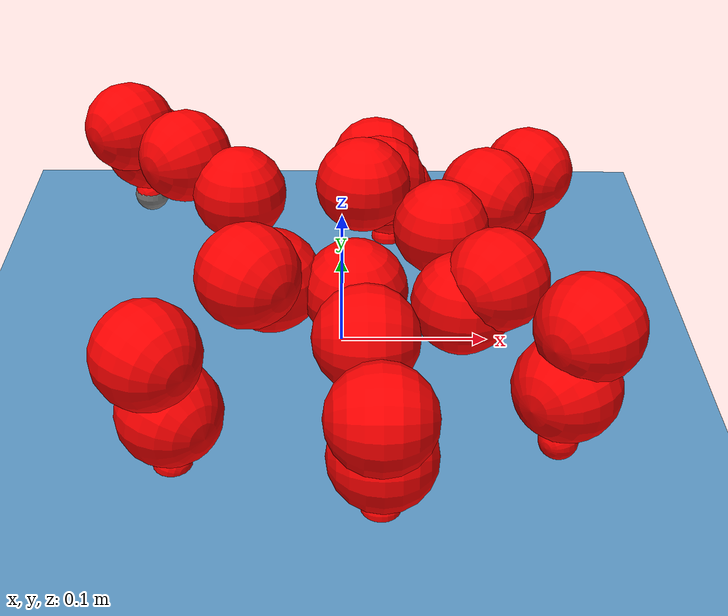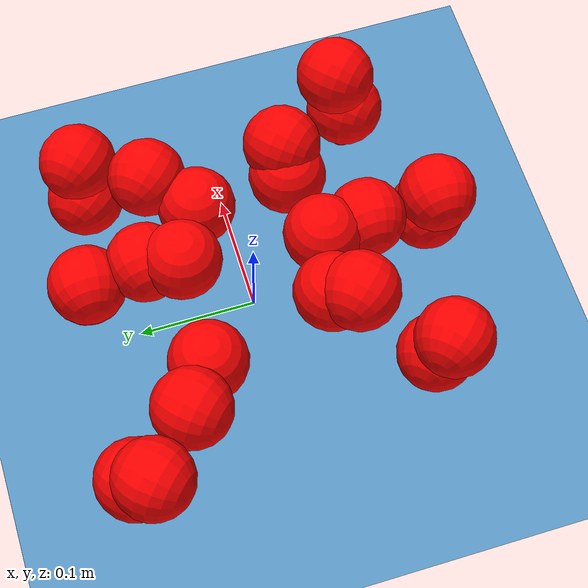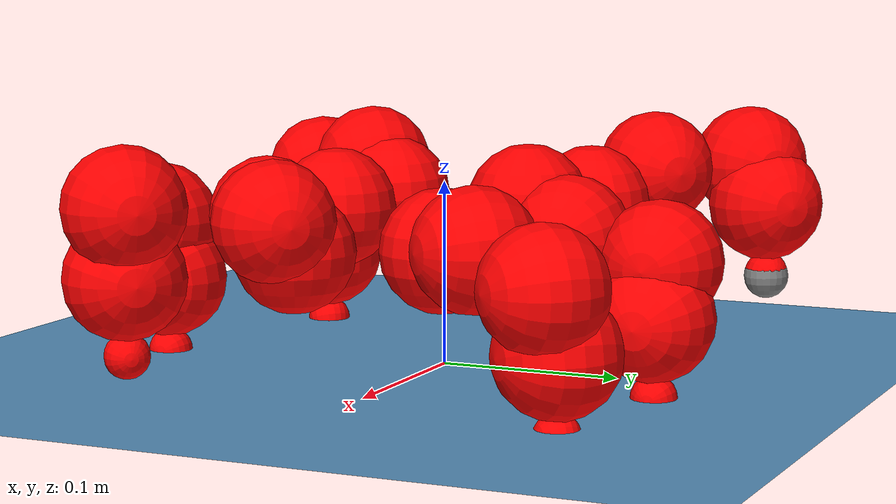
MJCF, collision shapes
<mujoco model="Golem">
  <compiler angle="radian" assetdir="assets" balanceinertia="true" inertiafromgeom="false"/>

  <option timestep="0.005" density="1.2" viscosity="2e-05"/>

  <size nkey="1"/>

  <visual>
    <quality shadowsize="8192"/>
    <map shadowclip="0.5"/>
  </visual>

  <default>
    <default class="/">
      <joint armature="0.01" damping="0.01" frictionloss="0.01"/>
      <geom contype="0" conaffinity="0" group="1" solref="-1000 -80"/>
      <site size="0.01 0.005 0.005" group="5"/>
      <general forcelimited="true" biastype="affine" gainprm="25" biasprm="0 -25 -0.5"/>
      <default class="visual">
        <geom type="mesh" group="2"/>
      </default>
      <default class="collision">
        <geom group="3"/>
      </default>
      <default class="foot">
        <geom size="0.01 0 0" condim="6" group="4" priority="1" solimp="0.015 1 0.01"/>
      </default>
      <default class="reward_collision_sphere">
        <geom group="5" rgba="1 0 0 1"/>
      </default>
    </default>
  </default>

  <asset>
    <texture type="skybox" colorspace="auto" name="//unnamed_texture_0" builtin="gradient" rgb1="0.95 0.95 0.95" rgb2="0.95 0.95 0.95" width="100" height="600"/>
    <texture type="2d" colorspace="auto" name="texplane" builtin="checker" rgb1="0.345 0.575 0.748" rgb2="0.345 0.575 0.748" markrgb="1 1 1" width="512" height="512"/>
    <material name="MatPlane" class="/" texture="texplane" texuniform="true" texrepeat="2 2" specular="0.9"/>
    <mesh name="body" class="/" file="body.stl" scale="0.001 0.001 0.001"/>
    <mesh name="coxa" class="/" file="coxa.stl" scale="0.001 0.001 0.001"/>
    <mesh name="femur" class="/" file="femur.stl" scale="0.001 0.001 0.001"/>
    <mesh name="tibia" class="/" file="tibia.stl" scale="0.001 0.001 0.001"/>
    <mesh name="tarsus" class="/" file="tarsus.stl" scale="0.001 0.001 0.001"/>
  </asset>

  <worldbody>
    <geom name="floor" class="/" size="100 100 0.125" type="plane" group="0" material="MatPlane"/>
    <light name="toplight_shadow" class="/" pos="0 0 5" dir="0.0990148 0.0990148 -0.990148" type="directional" ambient="0.04 0.04 0.04" diffuse="0.55 0.55 0.55" specular="0.12 0.12 0.12"/>
    <light name="toplight_fill" class="/" pos="0 0 5" dir="0.0990148 0.0990148 -0.990148" type="directional" castshadow="false" ambient="0.04 0.04 0.04" diffuse="0.3 0.3 0.3" specular="0.08 0.08 0.08"/>
    <body name="trunk" pos="-0.00156805 0.00149444 -0.00779459" quat="0.999956 -0.00107599 0.00575329 0.00731784">
      <inertial pos="-0.00853068 0.00186207 -0.00628457" quat="0.999997 -0.00154848 0.00132105 0.00124183" mass="1.5884" diaginertia="7.1201e-05 0.0010956 0.0577374"/>
      <joint name="//unnamed_joint_0" type="free"/>
      <geom name="//unnamed_geom_1" class="/" pos="0 0 0.0922905" quat="1 0 0 0" type="mesh" rgba="0.9 0.9 0.9 1" mesh="body"/>
      <site name="imu" class="/" pos="-0.0402392 0.0621319 0.132451" size="0.00812658"/>
      <camera name="track" class="/" pos="0 -1.23779 0" quat="0.707107 0.707107 0 0" mode="trackcom"/>
      <camera name="ego_camera" class="/" pos="0.049015 0 0.144204" quat="-0.5 -0.5 0.5 0.5"/>
      <body name="coxa_RR" pos="-0.0525685 -0.0615736 0.0929992" quat="0.378832 -0.00607619 0.00567077 -0.925428">
        <inertial pos="0.00374627 0.00229667 -0.014824" quat="0.997787 -0.0494717 0.00238181 0.0443578" mass="0.0948032" diaginertia="6.28202e-05 0.000707399 0.052701"/>
        <joint name="coxa_joint_RR" class="/" pos="0 0 0" axis="0.0227065 -0.0129726 -0.999658" range="-2.83874 3.4802" armature="0.00823649" damping="0" frictionloss="0.00301134"/>
        <geom name="//unnamed_geom_2" class="/" type="mesh" rgba="0.2 0.2 0.2 1" mesh="coxa"/>
        <geom name="//unnamed_geom_3" class="reward_collision_sphere" size="0.0325063" pos="-0.0113112 0 0"/>
        <body name="femur_RR" pos="0.00994053 0.00364466 0.0150763" quat="0.501126 -0.499963 0.497313 0.501588">
          <inertial pos="-0.0013033 -0.00340581 0.0072661" quat="0.999735 0.0106366 0.0202821 -0.00214123" mass="0.0997965" diaginertia="6.42171e-05 0.000757999 0.067824"/>
          <joint name="femur_joint_RR" class="/" pos="0 0 0" axis="-0.0471888 -0.0293092 -0.998456" stiffness="0.000540949" range="-3.47888 3.0638" armature="0.0143535" damping="0.062771" frictionloss="0.011712"/>
          <geom name="//unnamed_geom_4" class="/" type="mesh" rgba="0.9 0.9 0.9 1" mesh="femur"/>
          <geom name="//unnamed_geom_5" class="reward_collision_sphere" size="0.0325063"/>
          <body name="tibia_RR" pos="0.0143055 -0.0804412 0.00399476" quat="-0.00147217 0.999975 0.00695841 -9.16788e-05">
            <inertial pos="-0.0154747 -0.0122417 0.00150389" quat="0.999719 0.0186669 0.00653369 0.0130454" mass="0.0868969" diaginertia="8.50238e-05 0.000928945 0.0748576"/>
            <joint name="tibia_joint_RR" class="/" pos="0 0 0" axis="-0.0764817 -0.0405945 0.996244" range="-3.48772 3.05975" armature="0.0136577" damping="0.0692518" frictionloss="0.0107016"/>
            <geom name="//unnamed_geom_6" class="/" type="mesh" rgba="0.2 0.2 0.2 1" mesh="tibia"/>
            <geom name="//unnamed_geom_7" class="reward_collision_sphere" size="0.0325063"/>
            <body name="tarsus_RR" pos="0.0477834 -0.010989 -0.00241036" quat="0.999988 -0.000887546 -0.0043436 0.00201991">
              <inertial pos="0.0199286 0.00561387 -0.00568574" quat="0.500956 0.486172 0.50866 0.50393" mass="0.0965441" diaginertia="5.55445e-05 0.000889517 0.0444906"/>
              <joint name="tarsus_joint_RR" class="/" pos="0 0 0" axis="-0.0672226 -0.0395176 0.996955" range="-2.91755 3.2636" armature="0.010786" damping="0" frictionloss="0.00535632"/>
              <geom name="//unnamed_geom_8" class="/" type="mesh" rgba="0.9 0.9 0.9 1" mesh="tarsus"/>
              <geom name="foot_1" class="foot" size="0.00533606" pos="0.0422283 0 0" quat="0 -0.707107 0 0.707107"/>
              <geom name="//unnamed_geom_10" class="reward_collision_sphere" size="0.0325063"/>
              <geom name="//unnamed_geom_11" class="reward_collision_sphere" size="0.0121899" pos="0.0405316 0 0"/>
              <site name="foot_1" class="foot" pos="0.0422283 0 0" quat="0 -0.707107 0 0.707107" size="0.00812658"/>
            </body>
          </body>
        </body>
      </body>
      <body name="coxa_RM" pos="0.00752621 -0.0740057 0.0913376" quat="0.705215 0.0075139 0.00305381 -0.708947">
        <inertial pos="-0.0111113 0.0162738 -0.00924415" quat="0.99972 0.0041487 -0.0229251 0.004259" mass="0.142686" diaginertia="0.000102672 0.00105266 0.0717119"/>
        <joint name="coxa_joint_RM" class="/" pos="0 0 0" axis="-0.0789875 0.0163335 -0.996742" range="-3.10613 2.82904" armature="0.0014473" damping="0.0106865" frictionloss="0.0138283"/>
        <geom name="//unnamed_geom_12" class="/" type="mesh" rgba="0.2 0.2 0.2 1" mesh="coxa"/>
        <geom name="//unnamed_geom_13" class="reward_collision_sphere" size="0.0325063" pos="-0.0113112 0 0"/>
        <body name="femur_RM" pos="0.0287636 0.00575676 -0.00487509" quat="0.501152 -0.499043 0.499775 0.500027">
          <inertial pos="-0.0131174 -0.00780424 -0.00541103" quat="0.999248 0.0233137 0.0297387 -0.00867909" mass="0.0761696" diaginertia="7.63375e-05 0.000841436 0.0578589"/>
          <joint name="femur_joint_RM" class="/" pos="0 0 0" axis="-0.0463014 0.00698042 -0.998903" range="-2.9109 3.20995" armature="0.0107585" damping="0" frictionloss="0.00260663"/>
          <geom name="//unnamed_geom_14" class="/" type="mesh" rgba="0.9 0.9 0.9 1" mesh="femur"/>
          <geom name="//unnamed_geom_15" class="reward_collision_sphere" size="0.0325063"/>
          <body name="tibia_RM" pos="0.00508295 -0.0647315 0.00689544" quat="0.00139366 0.999996 -0.00224497 0.00119692">
            <inertial pos="-0.00999537 0.00245265 0.0164774" quat="0.996846 -0.0321091 0.0403439 -0.0603285" mass="0.108246" diaginertia="5.76399e-05 0.000823992 0.0480917"/>
            <joint name="tibia_joint_RM" class="/" pos="0 0 0" axis="0.00326249 -0.00254365 0.999991" stiffness="0.00322029" range="-3.27789 3.34827" armature="0.00208157" damping="0" frictionloss="0.000703022"/>
            <geom name="//unnamed_geom_16" class="/" type="mesh" rgba="0.2 0.2 0.2 1" mesh="tibia"/>
            <geom name="//unnamed_geom_17" class="reward_collision_sphere" size="0.0325063"/>
            <body name="tarsus_RM" pos="0.0325472 -0.00554276 -0.00162392" quat="1 -0.00015339 0.000219896 -7.57764e-06">
              <inertial pos="0.00878559 -0.00239342 0.0057263" quat="0.546427 0.46067 0.473026 0.515215" mass="0.0974433" diaginertia="6.52014e-05 0.000786193 0.0724591"/>
              <joint name="tarsus_joint_RM" class="/" pos="0 0 0" axis="-0.00692626 0.00720946 0.99995" range="-3.48875 2.91004" armature="0.000942793" damping="0.0160166" frictionloss="0.0064658"/>
              <geom name="//unnamed_geom_18" class="/" type="mesh" rgba="0.9 0.9 0.9 1" mesh="tarsus"/>
              <geom name="foot_2" class="foot" size="0.00291953" pos="0.0422283 0 0" quat="0 -0.707107 0 0.707107"/>
              <geom name="//unnamed_geom_20" class="reward_collision_sphere" size="0.0325063"/>
              <geom name="//unnamed_geom_21" class="reward_collision_sphere" size="0.0121899" pos="0.0405316 0 0"/>
              <site name="foot_2" class="foot" pos="0.0422283 0 0" quat="0 -0.707107 0 0.707107" size="0.00812658"/>
            </body>
          </body>
        </body>
      </body>
      <body name="coxa_RF" pos="0.0829359 -0.0625568 0.0772226" quat="0.923839 0.00082032 -0.000470651 -0.382781">
        <inertial pos="0.0143886 0.0189921 -0.0132545" quat="0.997533 -0.0348258 -0.0407738 -0.0453071" mass="0.116332" diaginertia="6.15318e-05 0.000808737 0.0615177"/>
        <joint name="coxa_joint_RF" class="/" pos="0 0 0" axis="0.00237063 0.0215817 -0.999764" stiffness="0.00465381" range="-2.9287 2.79672" armature="0.0134771" damping="0" frictionloss="0.0104661"/>
        <geom name="//unnamed_geom_22" class="/" type="mesh" rgba="0.2 0.2 0.2 1" mesh="coxa"/>
        <geom name="//unnamed_geom_23" class="reward_collision_sphere" size="0.0325063" pos="-0.0113112 0 0"/>
        <body name="femur_RF" pos="0.00370498 0.0130859 0.0185459" quat="0.505613 -0.495373 0.502309 0.496636">
          <inertial pos="0.000491916 0.014248 -0.0168788" quat="0.996175 -0.0484993 0.0716667 -0.0121038" mass="0.121563" diaginertia="9.12928e-05 0.00114211 0.0701705"/>
          <joint name="femur_joint_RF" class="/" pos="0 0 0" axis="-0.00366332 0.0469183 -0.998892" range="-3.41428 3.12129" armature="0.00455871" damping="0.0627444" frictionloss="0.0149715"/>
          <geom name="//unnamed_geom_24" class="/" type="mesh" rgba="0.9 0.9 0.9 1" mesh="femur"/>
          <geom name="//unnamed_geom_25" class="reward_collision_sphere" size="0.0325063"/>
          <body name="tibia_RF" pos="-0.00954133 -0.0751845 -0.0110651" quat="-0.00509138 0.999975 0.0049544 0.000364167">
            <inertial pos="0.00253173 -0.0120436 0.00971322" quat="0.997698 -0.0283546 -0.0267003 0.0555125" mass="0.103543" diaginertia="7.3289e-05 0.00101468 0.0752355"/>
            <joint name="tibia_joint_RF" class="/" pos="0 0 0" axis="0.0545577 -0.0597915 0.996719" range="-2.9919 3.19141" armature="0.0124488" damping="0" frictionloss="0.00786503"/>
            <geom name="//unnamed_geom_26" class="/" type="mesh" rgba="0.2 0.2 0.2 1" mesh="tibia"/>
            <geom name="//unnamed_geom_27" class="reward_collision_sphere" size="0.0325063"/>
            <body name="tarsus_RF" pos="0.038089 -0.00159566 0.0118231" quat="0.999965 0.00756427 -0.00351698 0.000802379">
              <inertial pos="0.0392501 0.000531535 -0.0186413" quat="0.534606 0.438811 0.51062 0.510791" mass="0.150375" diaginertia="7.30298e-05 0.00118929 0.0717586"/>
              <joint name="tarsus_joint_RF" class="/" pos="0 0 0" axis="0.0806609 0.033265 0.996186" range="-3.49045 2.97984" armature="0.00820187" damping="0" frictionloss="0.00262442"/>
              <geom name="//unnamed_geom_28" class="/" type="mesh" rgba="0.9 0.9 0.9 1" mesh="tarsus"/>
              <geom name="foot_3" class="foot" size="0.00548737" pos="0.0422283 0 0" quat="0 -0.707107 0 0.707107"/>
              <geom name="//unnamed_geom_30" class="reward_collision_sphere" size="0.0325063"/>
              <geom name="//unnamed_geom_31" class="reward_collision_sphere" size="0.0121899" pos="0.0405316 0 0"/>
              <site name="foot_3" class="foot" pos="0.0422283 0 0" quat="0 -0.707107 0 0.707107" size="0.00812658"/>
            </body>
          </body>
        </body>
      </body>
      <body name="coxa_LR" pos="-0.0776493 0.0651764 0.0898486" quat="0.384084 0.00741365 0.00404903 0.92326">
        <inertial pos="-0.01643 -0.00237193 0.0128922" quat="0.997278 -0.00612751 0.051268 0.0526427" mass="0.103538" diaginertia="7.1156e-05 0.000880744 0.0604732"/>
        <joint name="coxa_joint_LR" class="/" pos="0 0 0" axis="-0.000722897 -0.0865022 -0.996251" stiffness="0.0283721" range="-2.99503 3.03871" armature="0.0126612" damping="0.0432457" frictionloss="0.00931121"/>
        <geom name="//unnamed_geom_32" class="/" type="mesh" rgba="0.2 0.2 0.2 1" mesh="coxa"/>
        <geom name="//unnamed_geom_33" class="reward_collision_sphere" size="0.0325063" pos="-0.0113112 0 0"/>
        <body name="femur_LR" pos="0.0335336 0.0110832 0.01543" quat="0.498552 -0.506244 0.500342 0.494794">
          <inertial pos="-0.00952933 0.00576551 -0.00278769" quat="0.999891 0.00296715 0.0012023 0.0144234" mass="0.122961" diaginertia="8.08232e-05 0.000978435 0.0570441"/>
          <joint name="femur_joint_LR" class="/" pos="0 0 0" axis="-0.0106498 0.00476987 0.999932" range="-3.36463 2.76182" armature="0.00928424" damping="0" frictionloss="0.000673594"/>
          <geom name="//unnamed_geom_34" class="/" type="mesh" rgba="0.9 0.9 0.9 1" mesh="femur"/>
          <geom name="//unnamed_geom_35" class="reward_collision_sphere" size="0.0325063"/>
          <body name="tibia_LR" pos="0.000952531 -0.0614443 0.00144124" quat="0.000910515 0.999996 0.00079195 -0.00257086">
            <inertial pos="-0.0083938 0.00715557 -0.00666974" quat="0.999163 0.0152313 -0.0170468 0.0339348" mass="0.133719" diaginertia="8.35531e-05 0.000813439 0.0678899"/>
            <joint name="tibia_joint_LR" class="/" pos="0 0 0" axis="0.000545723 0.000940471 -0.999999" stiffness="0.0376867" range="-3.30983 3.46462" armature="0.0158457" damping="0" frictionloss="0.0128851"/>
            <geom name="//unnamed_geom_36" class="/" type="mesh" rgba="0.2 0.2 0.2 1" mesh="tibia"/>
            <geom name="//unnamed_geom_37" class="reward_collision_sphere" size="0.0325063"/>
            <body name="tarsus_LR" pos="0.0216934 0.00106086 0.0160648" quat="0.999992 1.80111e-05 -0.00333481 0.00228347">
              <inertial pos="0.0186201 0.00961242 0.000807987" quat="0.497075 0.515742 0.492588 0.494251" mass="0.0952907" diaginertia="6.96402e-05 0.000928041 0.0543691"/>
              <joint name="tarsus_joint_LR" class="/" pos="0 0 0" axis="0.0161779 0.03716 -0.999178" stiffness="0.0527543" range="-3.48037 3.16252" armature="0.00746654" damping="0.0961245" frictionloss="0.00564644"/>
              <geom name="//unnamed_geom_38" class="/" type="mesh" rgba="0.9 0.9 0.9 1" mesh="tarsus"/>
              <geom name="foot_4" class="foot" size="0.0127461" pos="0.0422283 0 0" quat="0.707107 0 -0.707107 0"/>
              <geom name="//unnamed_geom_40" class="reward_collision_sphere" size="0.0325063"/>
              <geom name="//unnamed_geom_41" class="reward_collision_sphere" size="0.0121899" pos="0.0405316 0 0"/>
              <site name="foot_4" class="foot" pos="0.0422283 0 0" quat="0.707107 0 -0.707107 0" size="0.00812658"/>
            </body>
          </body>
        </body>
      </body>
      <body name="coxa_LM" pos="0.0153559 0.06439 0.0998248" quat="0.703861 0.00820976 -0.00100408 0.71029">
        <inertial pos="0.0103567 -0.000347971 -0.0126011" quat="0.999638 0.02338 -0.012244 -0.0051902" mass="0.0914984" diaginertia="4.49136e-05 0.000693986 0.0411741"/>
        <joint name="coxa_joint_LM" class="/" pos="0 0 0" axis="0.0110655 -0.00580704 -0.999922" range="-2.83226 3.28048" armature="0.0143276" damping="0" frictionloss="0.00206112"/>
        <geom name="//unnamed_geom_42" class="/" type="mesh" rgba="0.2 0.2 0.2 1" mesh="coxa"/>
        <geom name="//unnamed_geom_43" class="reward_collision_sphere" size="0.0325063" pos="-0.0113112 0 0"/>
        <body name="femur_LM" pos="0.0162897 -0.0135625 -0.0134224" quat="0.499944 -0.500107 0.499593 0.500356">
          <inertial pos="-0.00125209 0.0139106 0.00159672" quat="0.998035 -0.0490682 -0.0124099 0.0369406" mass="0.154631" diaginertia="0.000103367 0.00106364 0.0727313"/>
          <joint name="femur_joint_LM" class="/" pos="0 0 0" axis="-0.0499307 0.0204182 0.998544" range="-3.29522 3.23887" armature="0.0133221" damping="0" frictionloss="0.00282992"/>
          <geom name="//unnamed_geom_44" class="/" type="mesh" rgba="0.9 0.9 0.9 1" mesh="femur"/>
          <geom name="//unnamed_geom_45" class="reward_collision_sphere" size="0.0325063"/>
          <body name="tibia_LM" pos="0.0107985 -0.0494618 -0.000190365" quat="-0.00151898 0.999995 -0.00173247 0.00200645">
            <inertial pos="0.0175926 -0.0189541 -0.00538535" quat="0.999997 0.00143037 -0.0002337 -0.00195388" mass="0.0796249" diaginertia="8.28207e-05 0.000793879 0.0532651"/>
            <joint name="tibia_joint_LM" class="/" pos="0 0 0" axis="0.00129649 0.0014182 -0.999998" range="-3.42448 3.15912" armature="0.00914084" damping="0.0159327" frictionloss="0.0130582"/>
            <geom name="//unnamed_geom_46" class="/" type="mesh" rgba="0.2 0.2 0.2 1" mesh="tibia"/>
            <geom name="//unnamed_geom_47" class="reward_collision_sphere" size="0.0325063"/>
            <body name="tarsus_LM" pos="0.0274222 -0.000604514 0.0121717" quat="0.999998 0.000667509 0.00115631 0.00157728">
              <inertial pos="0.0325069 0.00644605 0.00143915" quat="0.513272 0.497745 0.509607 0.478647" mass="0.114723" diaginertia="6.56128e-05 0.000837315 0.0463939"/>
              <joint name="tarsus_joint_LM" class="/" pos="0 0 0" axis="-0.075174 -0.00967554 -0.997123" stiffness="0.0234602" range="-3.30943 3.42054" armature="0.00807992" damping="0" frictionloss="0.0143183"/>
              <geom name="//unnamed_geom_48" class="/" type="mesh" rgba="0.9 0.9 0.9 1" mesh="tarsus"/>
              <geom name="foot_5" class="foot" size="0.00628877" pos="0.0422283 0 0" quat="0.707107 0 -0.707107 0"/>
              <geom name="//unnamed_geom_50" class="reward_collision_sphere" size="0.0325063"/>
              <geom name="//unnamed_geom_51" class="reward_collision_sphere" size="0.0121899" pos="0.0405316 0 0"/>
              <site name="foot_5" class="foot" pos="0.0422283 0 0" quat="0.707107 0 -0.707107 0" size="0.00812658"/>
            </body>
          </body>
        </body>
      </body>
      <body name="coxa_LF" pos="0.0759072 0.0346237 0.0817917" quat="0.922921 0.00505247 0.000229394 0.384956">
        <inertial pos="0.00554973 0.0140572 0.00634206" quat="0.999234 0.038676 -0.00429662 0.00424212" mass="0.12187" diaginertia="9.11465e-05 0.00128748 0.0751897"/>
        <joint name="coxa_joint_LF" class="/" pos="0 0 0" axis="-0.00359392 -0.00509672 -0.999981" stiffness="0.00239351" range="-2.86722 3.32946" armature="0.00690757" damping="0.0543803" frictionloss="0.00340534"/>
        <geom name="//unnamed_geom_52" class="/" type="mesh" rgba="0.2 0.2 0.2 1" mesh="coxa"/>
        <geom name="//unnamed_geom_53" class="reward_collision_sphere" size="0.0325063" pos="-0.0113112 0 0"/>
        <body name="femur_LF" pos="0.0359271 -0.0012768 0.00730911" quat="0.495884 -0.501082 0.498433 0.50456">
          <inertial pos="0.000889149 0.00149875 0.00565508" quat="0.995721 0.0638622 -0.0347116 -0.0570732" mass="0.110826" diaginertia="8.70782e-05 0.00113274 0.0744175"/>
          <joint name="femur_joint_LF" class="/" pos="0 0 0" axis="0.0592593 0.0115849 0.998175" stiffness="0.0086137" range="-3.21955 3.35755" armature="0.010142" damping="0" frictionloss="0.0158218"/>
          <geom name="//unnamed_geom_54" class="/" type="mesh" rgba="0.9 0.9 0.9 1" mesh="femur"/>
          <geom name="//unnamed_geom_55" class="reward_collision_sphere" size="0.0325063"/>
          <body name="tibia_LF" pos="0.0101009 -0.0623645 0.0083558" quat="0.000658713 0.999999 0.00112953 0.000684701">
            <inertial pos="-0.00604352 0.00577742 0.00360034" quat="0.998366 -0.0148029 0.0498005 -0.0238053" mass="0.0895334" diaginertia="8.43829e-05 0.00103692 0.071427"/>
            <joint name="tibia_joint_LF" class="/" pos="0 0 0" axis="0.0325614 0.0493533 -0.99825" range="-2.77611 3.05555" armature="0.00281153" damping="0" frictionloss="0.0135831"/>
            <geom name="//unnamed_geom_56" class="/" type="mesh" rgba="0.2 0.2 0.2 1" mesh="tibia"/>
            <geom name="//unnamed_geom_57" class="reward_collision_sphere" size="0.0325063"/>
            <body name="tarsus_LF" pos="0.0339074 -0.0098269 -0.0115162" quat="0.999998 0.00023484 -0.00170567 -0.00042656">
              <inertial pos="0.0331813 0.000208994 -0.0179197" quat="0.493084 0.503341 0.502624 0.500885" mass="0.131126" diaginertia="7.61787e-05 0.00102428 0.0654616"/>
              <joint name="tarsus_joint_LF" class="/" pos="0 0 0" axis="-0.0446697 -0.0560108 -0.99743" range="-3.13984 2.88995" armature="0.00715363" damping="0.0960061" frictionloss="0.00575855"/>
              <geom name="//unnamed_geom_58" class="/" type="mesh" rgba="0.9 0.9 0.9 1" mesh="tarsus"/>
              <geom name="foot_6" class="foot" size="0.00909714" pos="0.0422283 0 0" quat="0.707107 0 -0.707107 0"/>
              <geom name="//unnamed_geom_60" class="reward_collision_sphere" size="0.0325063"/>
              <geom name="//unnamed_geom_61" class="reward_collision_sphere" size="0.0121899" pos="0.0405316 0 0"/>
              <site name="foot_6" class="foot" pos="0.0422283 0 0" quat="0.707107 0 -0.707107 0" size="0.00812658"/>
            </body>
          </body>
        </body>
      </body>
    </body>
  </worldbody>

  <contact>
    <pair class="/" geom1="floor" geom2="foot_1" name="//unnamed_contact_0"/>
    <pair class="/" geom1="floor" geom2="foot_2" name="//unnamed_contact_1"/>
    <pair class="/" geom1="floor" geom2="foot_3" name="//unnamed_contact_2"/>
    <pair class="/" geom1="floor" geom2="foot_4" name="//unnamed_contact_3"/>
    <pair class="/" geom1="floor" geom2="foot_5" name="//unnamed_contact_4"/>
    <pair class="/" geom1="floor" geom2="foot_6" name="//unnamed_contact_5"/>
  </contact>

  <actuator>
    <general name="coxa_joint_RR" class="/" joint="coxa_joint_RR" forcerange="-2.8018 2.8018" gainprm="29.5516" biasprm="0 -29.5516 -0.585915"/>
    <general name="femur_joint_RR" class="/" joint="femur_joint_RR" forcerange="-3.59974 3.59974" gainprm="29.5516" biasprm="0 -29.5516 -0.585915"/>
    <general name="tibia_joint_RR" class="/" joint="tibia_joint_RR" forcerange="-7.66976 7.66976" gainprm="29.5516" biasprm="0 -29.5516 -0.585915"/>
    <general name="tarsus_joint_RR" class="/" joint="tarsus_joint_RR" forcerange="-4.39284 4.39284" gainprm="29.5516" biasprm="0 -29.5516 -0.585915"/>
    <general name="coxa_joint_RM" class="/" joint="coxa_joint_RM" forcerange="-2.76372 2.76372" gainprm="29.5516" biasprm="0 -29.5516 -0.585915"/>
    <general name="femur_joint_RM" class="/" joint="femur_joint_RM" forcerange="-2.47793 2.47793" gainprm="29.5516" biasprm="0 -29.5516 -0.585915"/>
    <general name="tibia_joint_RM" class="/" joint="tibia_joint_RM" forcerange="-8.31989 8.31989" gainprm="29.5516" biasprm="0 -29.5516 -0.585915"/>
    <general name="tarsus_joint_RM" class="/" joint="tarsus_joint_RM" forcerange="-1.88145 1.88145" gainprm="29.5516" biasprm="0 -29.5516 -0.585915"/>
    <general name="coxa_joint_RF" class="/" joint="coxa_joint_RF" forcerange="-2.20694 2.20694" gainprm="29.5516" biasprm="0 -29.5516 -0.585915"/>
    <general name="femur_joint_RF" class="/" joint="femur_joint_RF" forcerange="-9.67446 9.67446" gainprm="29.5516" biasprm="0 -29.5516 -0.585915"/>
    <general name="tibia_joint_RF" class="/" joint="tibia_joint_RF" forcerange="-8.22068 8.22068" gainprm="29.5516" biasprm="0 -29.5516 -0.585915"/>
    <general name="tarsus_joint_RF" class="/" joint="tarsus_joint_RF" forcerange="-5.00192 5.00192" gainprm="29.5516" biasprm="0 -29.5516 -0.585915"/>
    <general name="coxa_joint_LR" class="/" joint="coxa_joint_LR" forcerange="-3.41744 3.41744" gainprm="29.5516" biasprm="0 -29.5516 -0.585915"/>
    <general name="femur_joint_LR" class="/" joint="femur_joint_LR" forcerange="-8.97732 8.97732" gainprm="29.5516" biasprm="0 -29.5516 -0.585915"/>
    <general name="tibia_joint_LR" class="/" joint="tibia_joint_LR" forcerange="-8.26958 8.26958" gainprm="29.5516" biasprm="0 -29.5516 -0.585915"/>
    <general name="tarsus_joint_LR" class="/" joint="tarsus_joint_LR" forcerange="-7.20953 7.20953" gainprm="29.5516" biasprm="0 -29.5516 -0.585915"/>
    <general name="coxa_joint_LM" class="/" joint="coxa_joint_LM" forcerange="-5.98032 5.98032" gainprm="29.5516" biasprm="0 -29.5516 -0.585915"/>
    <general name="femur_joint_LM" class="/" joint="femur_joint_LM" forcerange="-5.93479 5.93479" gainprm="29.5516" biasprm="0 -29.5516 -0.585915"/>
    <general name="tibia_joint_LM" class="/" joint="tibia_joint_LM" forcerange="-9.96293 9.96293" gainprm="29.5516" biasprm="0 -29.5516 -0.585915"/>
    <general name="tarsus_joint_LM" class="/" joint="tarsus_joint_LM" forcerange="-5.9083 5.9083" gainprm="29.5516" biasprm="0 -29.5516 -0.585915"/>
    <general name="coxa_joint_LF" class="/" joint="coxa_joint_LF" forcerange="-2.45333 2.45333" gainprm="29.5516" biasprm="0 -29.5516 -0.585915"/>
    <general name="femur_joint_LF" class="/" joint="femur_joint_LF" forcerange="-2.37114 2.37114" gainprm="29.5516" biasprm="0 -29.5516 -0.585915"/>
    <general name="tibia_joint_LF" class="/" joint="tibia_joint_LF" forcerange="-6.56024 6.56024" gainprm="29.5516" biasprm="0 -29.5516 -0.585915"/>
    <general name="tarsus_joint_LF" class="/" joint="tarsus_joint_LF" forcerange="-7.78046 7.78046" gainprm="29.5516" biasprm="0 -29.5516 -0.585915"/>
  </actuator>

  <sensor>
    <gyro site="imu" name="imu_angular_velocity"/>
    <velocimeter site="imu" name="imu_linear_velocity"/>
    <framelinvel objtype="site" objname="foot_1" name="foot_1_global_linear_velocity"/>
    <framelinvel objtype="site" objname="foot_2" name="foot_2_global_linear_velocity"/>
    <framelinvel objtype="site" objname="foot_3" name="foot_3_global_linear_velocity"/>
    <framelinvel objtype="site" objname="foot_4" name="foot_4_global_linear_velocity"/>
    <framelinvel objtype="site" objname="foot_5" name="foot_5_global_linear_velocity"/>
    <framelinvel objtype="site" objname="foot_6" name="foot_6_global_linear_velocity"/>
  </sensor>

  <keyframe>
    <key name="home" qpos="0 0 0.1457 1 0 0 0 0 0 0 0 0 0 0 0 0 0 0 0 0 0 0 0 0 0 0 0 0 0 0 0"/>
  </keyframe>
</mujoco>
